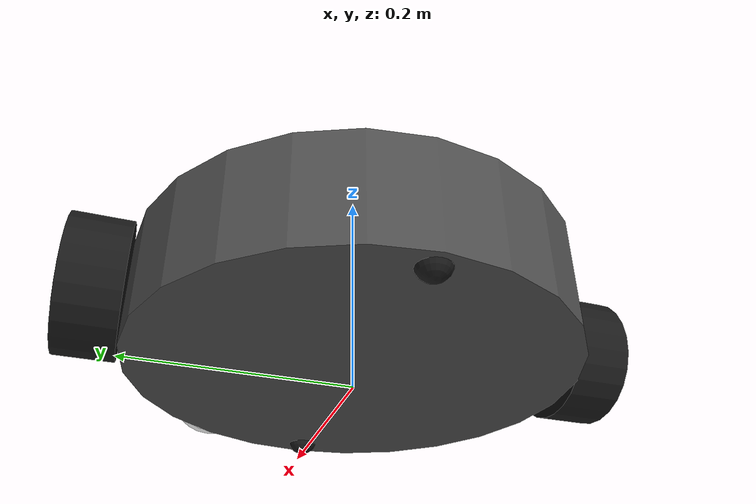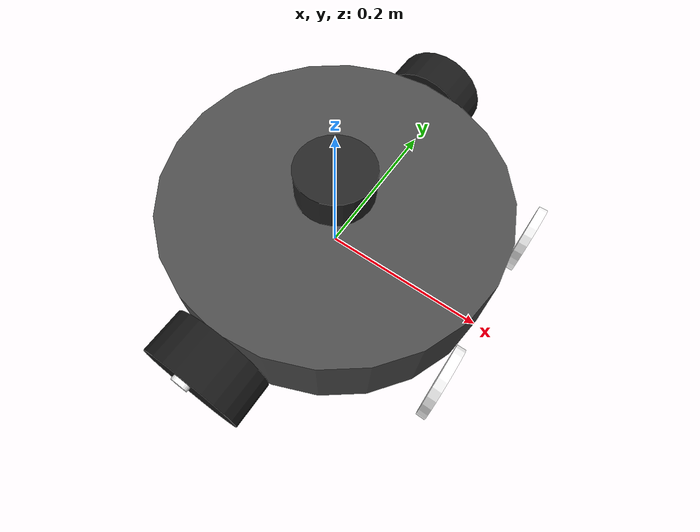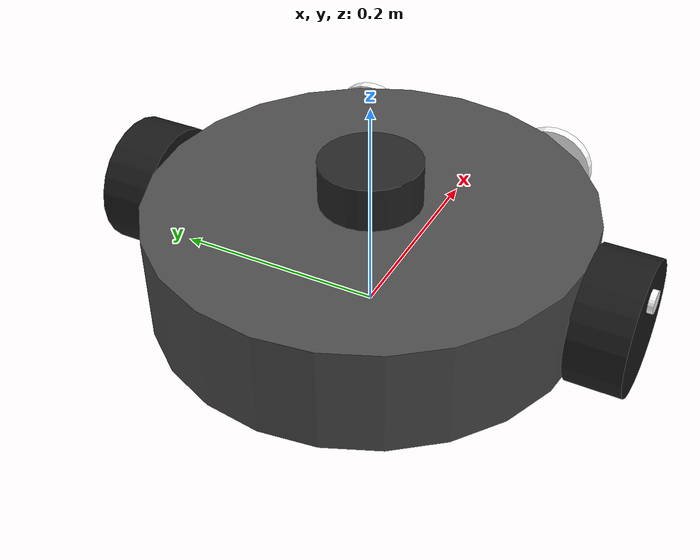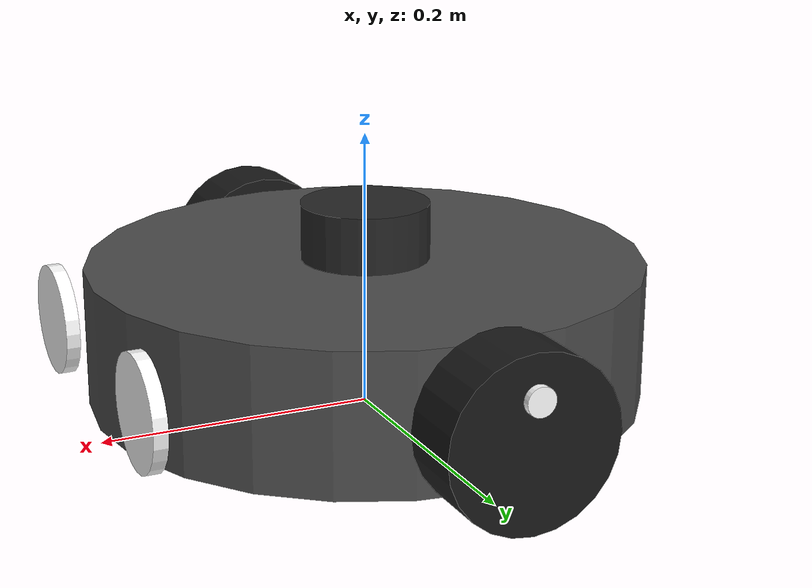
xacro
<?xml version="1.0"?>
<robot name="lex_robot_3d" xmlns:xacro="http://www.ros.org/wiki/xacro">

    <!-- Include components -->
    <xacro:include filename="$(find lex_simulation)/urdf/lex_base/common/wheel.xacro" />
    <xacro:include filename="$(find lex_simulation)/urdf/lex_base/common/caster_wheel.xacro" />
    <xacro:include filename="$(find lex_simulation)/urdf/lex_base/sensors/livox_mid360.xacro" />
    <xacro:include filename="$(find lex_simulation)/urdf/lex_base/sensors/imu.xacro" />
    <xacro:include filename="$(find lex_simulation)/urdf/lex_base/control/diff_drive.xacro" />

    <!-- Robot parameters -->
    <xacro:property name="body_radius" value="0.2" />
    <xacro:property name="body_height" value="0.1" />
    <xacro:property name="wheel_radius" value="0.06" />
    <xacro:property name="wheel_width" value="0.05" />
    <xacro:property name="caster_radius" value="0.015" />

    <!-- Materials -->
    <material name="body_color">
        <color rgba="0.3 0.3 0.3 1.0" />
    </material>
    <material name="wheel_color">
        <color rgba="0.1 0.1 0.1 1.0" />
    </material>

<!-- Base Footprint -->
    <link name="base_footprint" />

    <joint name="base_footprint_joint" type="fixed">
        <parent link="base_footprint" />
        <child link="base_link" />
        <origin xyz="0 0 ${wheel_radius - body_height/2}" rpy="0 0 0" />
    </joint>

<!-- Base Link -->
    <link name="base_link">
        <visual>
            <geometry>
                <cylinder radius="${body_radius}" length="${body_height}" />
            </geometry>
            <origin xyz="0 0 ${body_height/2}" rpy="0 0 0" />
            <material name="body_color" />
        </visual>
        <collision>
            <geometry>
                <cylinder radius="${body_radius}" length="${body_height}" />
            </geometry>
            <origin xyz="0 0 ${body_height/2}" rpy="0 0 0" />
        </collision>
        <inertial>
            <mass value="15.0" />
            <origin xyz="0 0 ${body_height/2}" rpy="0 0 0" />
            <inertia ixx="0.02" ixy="0.0" ixz="0.0"
                     iyy="0.02" iyz="0.0"
                     izz="0.03" />
        </inertial>
    </link>

<!-- Base Eye  -->
    <joint name="base_eye_left_joint" type="fixed">
        <parent link="base_link" />
        <child link="base_eye_left_link" />
        <origin xyz="${body_radius} ${body_radius/2} ${body_height/2}" rpy="0 1.578 0" />
    </joint>

    <link name="base_eye_left_link">
        <visual>
            <geometry>
                <cylinder radius="0.04" length="0.01" />
            </geometry>
            <origin xyz="0 0 0" rpy="0 0 0" />
            <material name="eye_left_color">
                <color rgba="1.0 1.0 1.0 1.0" />
            </material>
        </visual>
        <collision>
            <geometry>
                <cylinder radius="0.04" length="0.01" />
            </geometry>
            <origin xyz="0 0 0" rpy="0 0 0" />
        </collision>
        <inertial>
            <mass value="0.1" />
            <origin xyz="0 0 0" rpy="0 0 0" />
            <inertia ixx="0.0001" ixy="0.0" ixz="0.0"
                     iyy="0.0001" iyz="0.0"
                     izz="0.0001" />
        </inertial>
    </link>

    <joint name="base_eye_right_joint" type="fixed">
        <parent link="base_link" />
        <child link="base_eye_right_link" />
        <origin xyz="${body_radius} -${body_radius/2} ${body_height/2}" rpy="0 1.578 0" />
    </joint>

    <link name="base_eye_right_link">
        <visual>
            <geometry>
                <cylinder radius="0.04" length="0.01" />
            </geometry>
            <origin xyz="0 0 0" rpy="0 0 0" />
            <material name="eye_right_color">
                <color rgba="1.0 1.0 1.0 1.0" />
            </material>
        </visual>
        <collision>
            <geometry>
                <cylinder radius="0.04" length="0.01" />
            </geometry>
            <origin xyz="0 0 0" rpy="0 0 0" />
        </collision>
        <inertial>
            <mass value="0.1" />
            <origin xyz="0 0 0" rpy="0 0 0" />
            <inertia ixx="0.0001" ixy="0.0" ixz="0.0"
                     iyy="0.0001" iyz="0.0"
                     izz="0.0001" />
        </inertial>
    </link>

<!-- Wheels -->
    <xacro:wheel prefix="left" reflect="1" parent="base_link"
                 xyz="0 ${body_radius + wheel_width/2} ${body_height/2}" rpy="0 0 0"
                 wheel_radius="${wheel_radius}" wheel_width="${wheel_width}" />
    <xacro:wheel prefix="right" reflect="-1" parent="base_link"
                 xyz="0 ${-body_radius - wheel_width/2} ${body_height/2}" rpy="0 0 0"
                 wheel_radius="${wheel_radius}" wheel_width="${wheel_width}" />

<!-- Caster Wheels -->
    <xacro:caster_wheel prefix="front" parent="base_link"
                        xyz="${body_radius - 0.02} 0 ${-wheel_radius + body_height/2 + caster_radius}" rpy="0 0 0"
                        caster_radius="${caster_radius}" />
    <xacro:caster_wheel prefix="rear" parent="base_link"
                        xyz="${-body_radius + 0.02} 0 ${-wheel_radius + body_height/2 + caster_radius}" rpy="0 0 0"
                        caster_radius="${caster_radius}" />

<!-- Livox Mid-360 -->
    <xacro:livox_mid360 parent="base_link" xyz="0 0 ${body_height + 0.02}" rpy="0 0 0" />

<!-- IMU Sensor -->
    <xacro:imu_sensor parent="base_link" xyz="0.05 0 ${body_height/2}" rpy="0 0 0" />

<!-- Gazebo Related -->
    <gazebo reference="base_link">
        <material>Gazebo/DarkGrey</material>
        <mu1 value="0.5" />
        <mu2 value="0.5" />
    </gazebo>

    <xacro:diff_drive_controller wheel_separation="${2 * (body_radius + wheel_width/2)}" wheel_diameter="${2 * wheel_radius}" />

</robot>

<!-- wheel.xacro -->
<robot name="wheel" xmlns:xacro="http://www.ros.org/wiki/xacro">

    <!-- Wheel macro with explicit parameters -->
    <xacro:macro name="wheel" params="prefix reflect parent xyz rpy wheel_radius wheel_width">
        <joint name="${prefix}_wheel_joint" type="continuous">
            <parent link="${parent}" />
            <child link="${prefix}_wheel" />
            <origin xyz="${xyz}" rpy="${rpy}" />
            <axis xyz="0 1 0" />
            <dynamics damping="0.1" friction="0.1" />
        </joint>

        <link name="${prefix}_wheel">
            <visual>
                <geometry>
                    <cylinder radius="${wheel_radius}" length="${wheel_width}" />
                </geometry>
                <origin xyz="0 0 0" rpy="${pi/2} 0 0" />
                <material name="wheel_color">
                    <color rgba="0.1 0.1 0.1 1.0" />
                </material>
            </visual>
            <collision>
                <geometry>
                    <cylinder radius="${wheel_radius}" length="${wheel_width}" />
                </geometry>
                <origin xyz="0 0 0" rpy="${pi/2} 0 0" />
            </collision>
            <inertial>
                <mass value="0.1" />
                <origin xyz="0 0 0" rpy="${pi/2} 0 0" />
                <inertia ixx="0.0001" ixy="0.0" ixz="0.0"
                    iyy="0.0001" iyz="0.0"
                    izz="0.0002" />
            </inertial>
        </link>

        <!-- Marker -->
        <joint name="${prefix}_marker_joint" type="fixed">
            <parent link="${prefix}_wheel" />
            <child link="${prefix}_marker_link" />
            <origin xyz="0 ${reflect*wheel_width/2} ${wheel_radius/2}" rpy="1.57 0 0" />
        </joint>

        <link name="${prefix}_marker_link">
            <visual>
                <geometry>
                    <cylinder radius="0.01" length="0.01" />
                </geometry>
                <origin xyz="0 0 0" rpy="0 0 0" />
                <material name="white">
                    <color rgba="1.0 1.0 1.0 1.0" />
                </material>
            </visual>
        </link>

        <!-- Transmission for ros_control -->
        <transmission name="${prefix}_wheel_trans">
            <type>transmission_interface/SimpleTransmission</type>
            <joint name="${prefix}_wheel_joint">
                <hardwareInterface>hardware_interface/VelocityJointInterface</hardwareInterface>
            </joint>
            <actuator name="${prefix}_wheel_motor">
                <mechanicalReduction>1</mechanicalReduction>
            </actuator>
        </transmission>

        <gazebo reference="${prefix}_wheel">
            <mu1>50.0</mu1>
            <mu2>50.0</mu2>
            <kp>1000000.0</kp>
            <kd>100.0</kd>
            <minDepth>0.001</minDepth>
            <maxVel>1.0</maxVel>
            <material>Gazebo/DarkGrey</material>
        </gazebo>
    </xacro:macro>

</robot>

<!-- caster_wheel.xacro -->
<robot name="caster_wheel" xmlns:xacro="http://www.ros.org/wiki/xacro">

    <xacro:macro name="caster_wheel" params="prefix parent xyz rpy caster_radius">
        <joint name="${prefix}_caster_joint" type="fixed">
            <parent link="${parent}" />
            <child link="${prefix}_caster" />
            <origin xyz="${xyz}" rpy="${rpy}" />
        </joint>

        <link name="${prefix}_caster">
            <visual>
                <geometry>
                    <sphere radius="${caster_radius}" />
                </geometry>
                <material name="wheel_color">
                    <color rgba="0.1 0.1 0.1 1.0" />
                </material>
            </visual>
            <collision>
                <geometry>
                    <sphere radius="${caster_radius}" />
                </geometry>
            </collision>
            <inertial>
                <mass value="0.01" />
                <origin xyz="0 0 0" rpy="0 0 0" />
                <inertia ixx="0.000001" ixy="0.0" ixz="0.0"
                         iyy="0.000001" iyz="0.0"
                         izz="0.000001" />
            </inertial>
        </link>

        <gazebo reference="${prefix}_caster">
            <mu1>0.0</mu1>
            <mu2>0.0</mu2>
            <kp>1000000.0</kp>
            <kd>100.0</kd>
            <minDepth>0.001</minDepth>
            <maxVel>1.0</maxVel>
            <material>Gazebo/Grey</material>
        </gazebo>
    </xacro:macro>

</robot>

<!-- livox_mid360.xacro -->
<robot name="livox_mid360_sensor" xmlns:xacro="http://www.ros.org/wiki/xacro">

    <!-- Livox Mid-360 LiDAR sensor macro -->
    <!-- Specs: 360° horizontal, 59° vertical (-7° to +52°), 200k pts/sec, range 0.1-200m -->

    <xacro:macro name="livox_mid360" params="parent xyz rpy topic_name:=/livox/lidar frame_name:=livox_frame">

        <!-- Joint connecting Livox to base -->
        <joint name="livox_mid360_joint" type="fixed">
            <parent link="${parent}" />
            <child link="${frame_name}" />
            <origin xyz="${xyz}" rpy="${rpy}" />
        </joint>

        <!-- Livox Mid-360 Link -->
        <link name="${frame_name}">
            <visual>
                <geometry>
                    <cylinder radius="0.0465" length="0.041" />
                </geometry>
                <material name="livox_color">
                    <color rgba="0.15 0.15 0.15 1.0" />
                </material>
            </visual>
            <collision>
                <geometry>
                    <cylinder radius="0.0465" length="0.041" />
                </geometry>
            </collision>
            <inertial>
                <mass value="0.37" />
                <origin xyz="0 0 0" rpy="0 0 0" />
                <inertia ixx="0.0002" ixy="0.0" ixz="0.0"
                         iyy="0.0002" iyz="0.0"
                         izz="0.00015" />
            </inertial>
        </link>

        <!-- Gazebo Livox Mid-360 Plugin -->
        <gazebo reference="${frame_name}">
            <sensor type="ray" name="livox_mid360">
                <pose>0 0 0 0 0 0</pose>
                <visualize>false</visualize>
                <update_rate>10</update_rate>
                <ray>
                    <scan>
                        <horizontal>
                            <samples>100</samples>
                            <resolution>1</resolution>
                            <min_angle>-3.14159</min_angle>
                            <max_angle>3.14159</max_angle>
                        </horizontal>
                        <vertical>
                            <samples>10</samples>
                            <resolution>1</resolution>
                            <!-- Livox Mid-360: -7° to +52° vertical FOV -->
                            <min_angle>-0.122</min_angle>
                            <max_angle>0.907</max_angle>
                        </vertical>
                    </scan>
                    <range>
                        <min>0.1</min>
                        <max>200.0</max>
                        <resolution>0.01</resolution>
                    </range>
                    <noise>
                        <type>gaussian</type>
                        <mean>0.0</mean>
                        <stddev>0.01</stddev>
                    </noise>
                </ray>
                <!-- Using standard gazebo_ros_laser plugin for PointCloud2 -->
                <plugin name="livox_mid360_plugin" filename="libgazebo_ros_block_laser.so">
                    <topicName>${topic_name}</topicName>
                    <frameName>${frame_name}</frameName>
                </plugin>
            </sensor>
            <material>Gazebo/DarkGrey</material>
        </gazebo>

    </xacro:macro>

    <!-- Livox Mid-360 with custom scan pattern (livox_ros_driver2 style) -->
    <xacro:macro name="livox_mid360_custom" params="parent xyz rpy topic_name:=/livox/lidar frame_name:=livox_frame">

        <joint name="livox_mid360_joint" type="fixed">
            <parent link="${parent}" />
            <child link="${frame_name}" />
            <origin xyz="${xyz}" rpy="${rpy}" />
        </joint>

        <link name="${frame_name}">
            <visual>
                <geometry>
                    <cylinder radius="0.0465" length="0.041" />
                </geometry>
                <material name="livox_color">
                    <color rgba="0.15 0.15 0.15 1.0" />
                </material>
            </visual>
            <collision>
                <geometry>
                    <cylinder radius="0.0465" length="0.041" />
                </geometry>
            </collision>
            <inertial>
                <mass value="0.37" />
                <origin xyz="0 0 0" rpy="0 0 0" />
                <inertia ixx="0.0002" ixy="0.0" ixz="0.0"
                         iyy="0.0002" iyz="0.0"
                         izz="0.00015" />
            </inertial>
        </link>

        <!-- Higher resolution version for better coverage -->
        <gazebo reference="${frame_name}">
            <sensor type="ray" name="livox_mid360">
                <pose>0 0 0 0 0 0</pose>
                <visualize>false</visualize>
                <update_rate>20</update_rate>
                <ray>
                    <scan>
                        <horizontal>
                            <samples>360</samples>
                            <resolution>1</resolution>
                            <min_angle>-3.14159</min_angle>
                            <max_angle>3.14159</max_angle>
                        </horizontal>
                        <vertical>
                            <samples>20</samples>
                            <resolution>1</resolution>
                            <min_angle>-0.122</min_angle>
                            <max_angle>0.907</max_angle>
                        </vertical>
                    </scan>
                    <range>
                        <min>0.1</min>
                        <max>200.0</max>
                        <resolution>0.005</resolution>
                    </range>
                    <noise>
                        <type>gaussian</type>
                        <mean>0.0</mean>
                        <stddev>0.005</stddev>
                    </noise>
                </ray>
                <plugin name="livox_mid360_plugin" filename="libgazebo_ros_block_laser.so">
                    <topicName>${topic_name}</topicName>
                    <frameName>${frame_name}</frameName>
                </plugin>
            </sensor>
            <material>Gazebo/DarkGrey</material>
        </gazebo>

    </xacro:macro>

</robot>

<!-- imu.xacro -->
<robot name="imu_sensor" xmlns:xacro="http://www.ros.org/wiki/xacro">

    <!-- IMU sensor macro -->
    <xacro:macro name="imu_sensor" params="parent xyz rpy topic_name:=/imu/data frame_name:=imu_link">

        <!-- Joint connecting IMU to base -->
        <joint name="imu_joint" type="fixed">
            <parent link="${parent}" />
            <child link="${frame_name}" />
            <origin xyz="${xyz}" rpy="${rpy}" />
        </joint>

        <!-- IMU Link -->
        <link name="${frame_name}">
            <visual>
                <geometry>
                    <box size="0.04 0.04 0.01" />
                </geometry>
                <material name="imu_color">
                    <color rgba="0.0 0.4 0.0 1.0" />
                </material>
            </visual>
            <collision>
                <geometry>
                    <box size="0.04 0.04 0.01" />
                </geometry>
            </collision>
            <inertial>
                <mass value="0.01" />
                <origin xyz="0 0 0" rpy="0 0 0" />
                <inertia ixx="0.000001" ixy="0.0" ixz="0.0"
                         iyy="0.000001" iyz="0.0"
                         izz="0.000001" />
            </inertial>
        </link>

        <!-- Gazebo IMU Plugin -->
        <gazebo reference="${frame_name}">
            <sensor type="imu" name="imu_sensor">
                <pose>0 0 0 0 0 0</pose>
                <visualize>false</visualize>
                <update_rate>100</update_rate>
                <imu>
                    <angular_velocity>
                        <x>
                            <noise type="gaussian">
                                <mean>0.0</mean>
                                <stddev>0.01</stddev>
                            </noise>
                        </x>
                        <y>
                            <noise type="gaussian">
                                <mean>0.0</mean>
                                <stddev>0.01</stddev>
                            </noise>
                        </y>
                        <z>
                            <noise type="gaussian">
                                <mean>0.0</mean>
                                <stddev>0.01</stddev>
                            </noise>
                        </z>
                    </angular_velocity>
                    <linear_acceleration>
                        <x>
                            <noise type="gaussian">
                                <mean>0.0</mean>
                                <stddev>0.017</stddev>
                            </noise>
                        </x>
                        <y>
                            <noise type="gaussian">
                                <mean>0.0</mean>
                                <stddev>0.017</stddev>
                            </noise>
                        </y>
                        <z>
                            <noise type="gaussian">
                                <mean>0.0</mean>
                                <stddev>0.017</stddev>
                            </noise>
                        </z>
                    </linear_acceleration>
                </imu>
                <plugin name="gazebo_ros_imu" filename="libgazebo_ros_imu_sensor.so">
                    <topicName>${topic_name}</topicName>
                    <bodyName>${frame_name}</bodyName>
                    <frameName>${frame_name}</frameName>
                    <updateRate>100</updateRate>
                </plugin>
            </sensor>
            <material>Gazebo/Green</material>
        </gazebo>

    </xacro:macro>

</robot>
